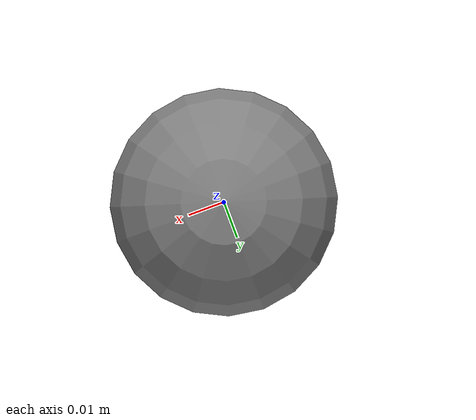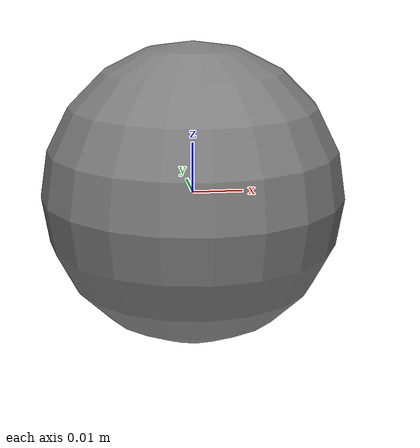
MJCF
<mujoco model="urdf_arm">
  <compiler angle="radian" autolimits="true"/>
  <option timestep="0.002" integrator="implicitfast">
    <flag contact="disable"/>
  </option>
  <default>
    <joint damping="1"/>
    <geom type="sphere" size="0.03" mass="0.5"/>
    <position kp="200" kv="10"/>
  </default>
  <worldbody>
    <body name="base_link">
      <geom/>
      <body name="link1">
        <joint name="j1" axis="0 0 1" range="-3 3"/>
        <geom/>
        <body name="link2">
          <joint name="j2" axis="0 1 0" range="-2 2"/>
          <geom/>
          <body name="link3">
            <joint name="j3" axis="0 1 0" range="-2.5 2.5"/>
            <geom/>
            <body name="link4">
              <joint name="j4" axis="0 0 1"/>
              <geom/>
              <body name="flange">
                <body name="hand">
                  <body name="left_finger">
                    <joint name="left_finger_joint" type="slide" axis="0 1 0" range="0 0.04"/>
                    <geom size="0.01" mass="0.05"/>
                  </body>
                  <body name="right_finger">
                    <joint name="right_finger_joint" type="slide" axis="0 -1 0" range="0 0.04"/>
                    <geom size="0.01" mass="0.05"/>
                  </body>
                  <body name="tcp"/>
                </body>
              </body>
            </body>
          </body>
        </body>
      </body>
    </body>
  </worldbody>
  <actuator>
    <position name="j1" joint="j1"/>
    <position name="j2" joint="j2"/>
    <position name="j3" joint="j3"/>
    <position name="j4" joint="j4"/>
    <position name="left_finger" joint="left_finger_joint" ctrlrange="0 0.04"/>
    <position name="right_finger" joint="right_finger_joint" ctrlrange="0 0.04"/>
  </actuator>
  <keyframe>
    <!-- Agrees with the SRDF's "home" group state for the arm. -->
    <key name="home" qpos="0 0.5 -0.5 0 0.04 0.04" ctrl="0 0.5 -0.5 0 0.04 0.04"/>
  </keyframe>
</mujoco>
